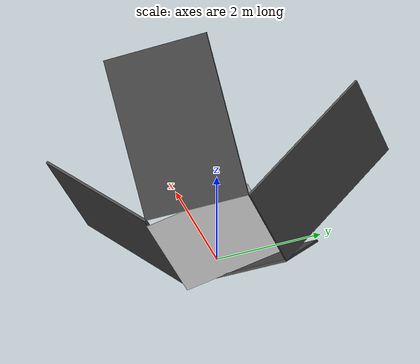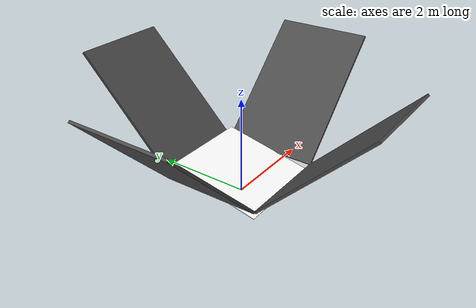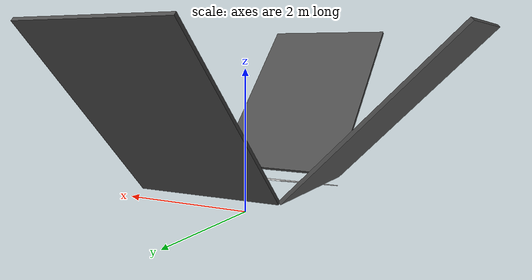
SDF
<?xml version="1.0" ?>
<sdf version="1.9">
  <model name="qr_egimli">
    <static>true</static>

    <!-- Tüm model 12 derece eğimli ve 0.5m havada -->
    <link name="link">
      <pose>0 0 0.5 0.2094 0 0</pose>
      <visual name="visual">
        <geometry>
          <box><size>2 2 0.01</size></box>
        </geometry>
        <material>
          <diffuse>1 1 1 1</diffuse>
          <specular>0 0 0 1</specular>
          <pbr>
            <metal>
              <albedo_map>materials/textures/qr_code.png</albedo_map>
            </metal>
          </pbr>
        </material>
      </visual>
    </link>

    <link name="plate_north">
      <pose>0 2.0606 1.5 -0.785398 0 0</pose>
      <visual name="visual">
        <geometry><box><size>2 0.05 3</size></box></geometry>
        <material><ambient>0.3 0.3 0.3 1</ambient><diffuse>0.3 0.3 0.3 1</diffuse></material>
      </visual>
    </link>
    <link name="plate_south">
      <pose>0 -2.0606 1.5 0.785398 0 0</pose>
      <visual name="visual">
        <geometry><box><size>2 0.05 3</size></box></geometry>
        <material><ambient>0.3 0.3 0.3 1</ambient><diffuse>0.3 0.3 0.3 1</diffuse></material>
      </visual>
    </link>
    <link name="plate_east">
      <pose>2.0606 0 1.5 0 0.785398 0</pose>
      <visual name="visual">
        <geometry><box><size>0.05 2 3</size></box></geometry>
        <material><ambient>0.3 0.3 0.3 1</ambient><diffuse>0.3 0.3 0.3 1</diffuse></material>
      </visual>
    </link>
    <link name="plate_west">
      <pose>-2.0606 0 1.5 0 -0.785398 0</pose>
      <visual name="visual">
        <geometry><box><size>0.05 2 3</size></box></geometry>
        <material><ambient>0.3 0.3 0.3 1</ambient><diffuse>0.3 0.3 0.3 1</diffuse></material>
      </visual>
    </link>

  </model>
</sdf>
